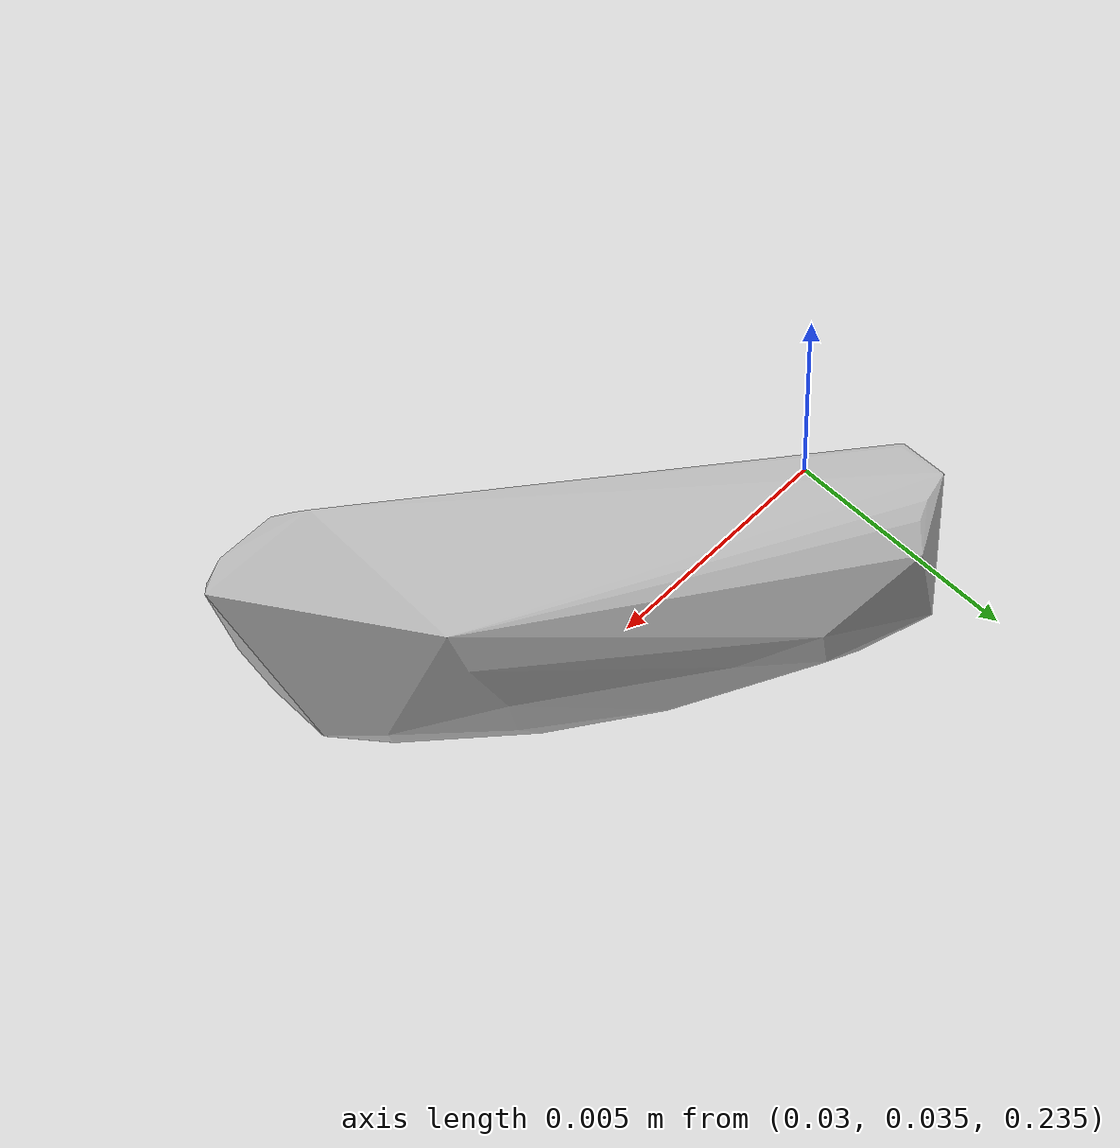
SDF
<?xml version="1.0"?>
<sdf version="1.7">
  <model name="vascular_partexport020">
    <link name="vascular_partexport020_body">
      <visual name="vascular_partexport020_visual">
        <geometry>
          <mesh>
            <uri>vascular_partexport020.obj</uri>
          </mesh>
        </geometry>
      </visual>
      <collision name="vascular_partexport020_collision">
        <geometry>
          <mesh>
            <uri>vascular_partexport020.obj</uri>
          </mesh>
        </geometry>
      </collision>
    </link>
    <frame name="vascular_partexport020_center">
      <pose relative_to="vascular_partexport020_body">0 0 0 0 0 0</pose>
    </frame>
  </model>
</sdf>
